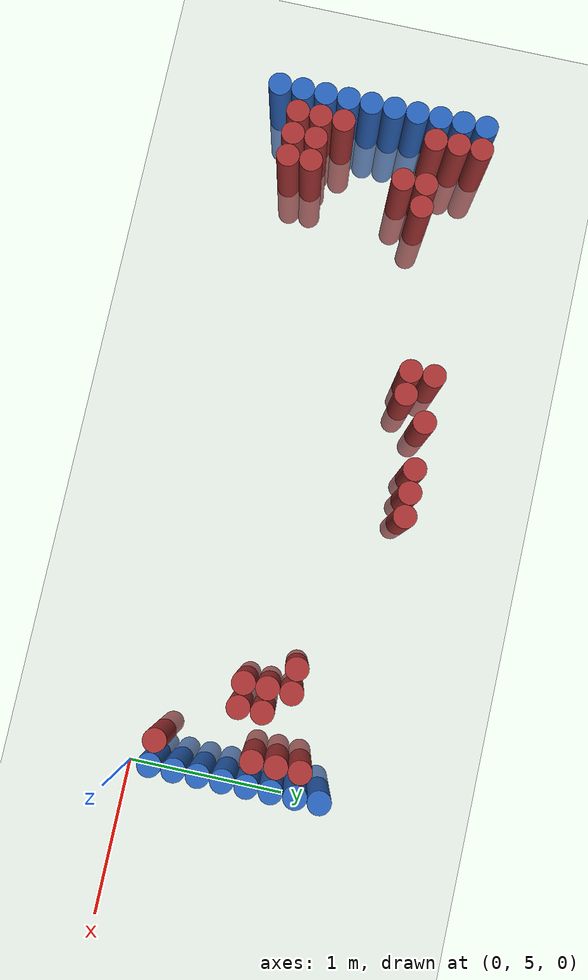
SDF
<sdf version="1.6">
 <world name="default">
  <model name="ground_plane">
   <static>1</static>
   <link name="link">
    <collision name="collision">
     <geometry><plane><normal>0 0 1</normal><size>100 100</size></plane></geometry>
     <surface><friction><ode><mu>100</mu><mu2>50</mu2></ode></friction></surface>
    </collision>
    <visual name="visual">
     <cast_shadows>0</cast_shadows>
     <geometry><plane><normal>0 0 1</normal><size>100 100</size></plane></geometry>
     <material>
      <script><uri>file://media/materials/scripts/gazebo.material</uri><name>Gazebo/Grey</name></script>
     </material>
    </visual>
   </link>
  </model>
  <model name="unit_cylinder_95">
   <static>1</static>
   <pose>-4.425000 5.025000 0.000000 0.000000 0.000000 0.000000</pose>
   <link name="link">
    <inertial>
     <mass>1</mass>
     <inertia><ixx>0.145833</ixx><ixy>0</ixy><ixz>0</ixz><iyy>0.145833</iyy><iyz>0</iyz><izz>0.125</izz></inertia>
    </inertial>
    <collision name="collision">
     <geometry><cylinder><radius>0.075000</radius><length>1</length></cylinder></geometry>
    </collision>
    <visual name="visual">
     <geometry><cylinder><radius>0.075000</radius><length>1</length></cylinder></geometry>
     <material>
      <ambient>0.152000 0.379000 0.720000 1</ambient>
      <diffuse>0.152000 0.379000 0.720000 1</diffuse>
     </material>
     <material>
      <script><name>Gazebo/Grey</name><uri>file://media/materials/scripts/gazebo.material</uri></script>
     </material>
    </visual>
   </link>
  </model>
  <model name="unit_cylinder_96">
   <static>1</static>
   <pose>-4.425000 5.175000 0.000000 0.000000 0.000000 0.000000</pose>
   <link name="link">
    <inertial>
     <mass>1</mass>
     <inertia><ixx>0.145833</ixx><ixy>0</ixy><ixz>0</ixz><iyy>0.145833</iyy><iyz>0</iyz><izz>0.125</izz></inertia>
    </inertial>
    <collision name="collision">
     <geometry><cylinder><radius>0.075000</radius><length>1</length></cylinder></geometry>
    </collision>
    <visual name="visual">
     <geometry><cylinder><radius>0.075000</radius><length>1</length></cylinder></geometry>
     <material>
      <ambient>0.152000 0.379000 0.720000 1</ambient>
      <diffuse>0.152000 0.379000 0.720000 1</diffuse>
     </material>
     <material>
      <script><name>Gazebo/Grey</name><uri>file://media/materials/scripts/gazebo.material</uri></script>
     </material>
    </visual>
   </link>
  </model>
  <model name="unit_cylinder_97">
   <static>1</static>
   <pose>-4.425000 5.325000 0.000000 0.000000 0.000000 0.000000</pose>
   <link name="link">
    <inertial>
     <mass>1</mass>
     <inertia><ixx>0.145833</ixx><ixy>0</ixy><ixz>0</ixz><iyy>0.145833</iyy><iyz>0</iyz><izz>0.125</izz></inertia>
    </inertial>
    <collision name="collision">
     <geometry><cylinder><radius>0.075000</radius><length>1</length></cylinder></geometry>
    </collision>
    <visual name="visual">
     <geometry><cylinder><radius>0.075000</radius><length>1</length></cylinder></geometry>
     <material>
      <ambient>0.152000 0.379000 0.720000 1</ambient>
      <diffuse>0.152000 0.379000 0.720000 1</diffuse>
     </material>
     <material>
      <script><name>Gazebo/Grey</name><uri>file://media/materials/scripts/gazebo.material</uri></script>
     </material>
    </visual>
   </link>
  </model>
  <model name="unit_cylinder_98">
   <static>1</static>
   <pose>-4.425000 5.475000 0.000000 0.000000 0.000000 0.000000</pose>
   <link name="link">
    <inertial>
     <mass>1</mass>
     <inertia><ixx>0.145833</ixx><ixy>0</ixy><ixz>0</ixz><iyy>0.145833</iyy><iyz>0</iyz><izz>0.125</izz></inertia>
    </inertial>
    <collision name="collision">
     <geometry><cylinder><radius>0.075000</radius><length>1</length></cylinder></geometry>
    </collision>
    <visual name="visual">
     <geometry><cylinder><radius>0.075000</radius><length>1</length></cylinder></geometry>
     <material>
      <ambient>0.152000 0.379000 0.720000 1</ambient>
      <diffuse>0.152000 0.379000 0.720000 1</diffuse>
     </material>
     <material>
      <script><name>Gazebo/Grey</name><uri>file://media/materials/scripts/gazebo.material</uri></script>
     </material>
    </visual>
   </link>
  </model>
  <model name="unit_cylinder_99">
   <static>1</static>
   <pose>-4.425000 5.625000 0.000000 0.000000 0.000000 0.000000</pose>
   <link name="link">
    <inertial>
     <mass>1</mass>
     <inertia><ixx>0.145833</ixx><ixy>0</ixy><ixz>0</ixz><iyy>0.145833</iyy><iyz>0</iyz><izz>0.125</izz></inertia>
    </inertial>
    <collision name="collision">
     <geometry><cylinder><radius>0.075000</radius><length>1</length></cylinder></geometry>
    </collision>
    <visual name="visual">
     <geometry><cylinder><radius>0.075000</radius><length>1</length></cylinder></geometry>
     <material>
      <ambient>0.152000 0.379000 0.720000 1</ambient>
      <diffuse>0.152000 0.379000 0.720000 1</diffuse>
     </material>
     <material>
      <script><name>Gazebo/Grey</name><uri>file://media/materials/scripts/gazebo.material</uri></script>
     </material>
    </visual>
   </link>
  </model>
  <model name="unit_cylinder_100">
   <static>1</static>
   <pose>-4.425000 5.775000 0.000000 0.000000 0.000000 0.000000</pose>
   <link name="link">
    <inertial>
     <mass>1</mass>
     <inertia><ixx>0.145833</ixx><ixy>0</ixy><ixz>0</ixz><iyy>0.145833</iyy><iyz>0</iyz><izz>0.125</izz></inertia>
    </inertial>
    <collision name="collision">
     <geometry><cylinder><radius>0.075000</radius><length>1</length></cylinder></geometry>
    </collision>
    <visual name="visual">
     <geometry><cylinder><radius>0.075000</radius><length>1</length></cylinder></geometry>
     <material>
      <ambient>0.152000 0.379000 0.720000 1</ambient>
      <diffuse>0.152000 0.379000 0.720000 1</diffuse>
     </material>
     <material>
      <script><name>Gazebo/Grey</name><uri>file://media/materials/scripts/gazebo.material</uri></script>
     </material>
    </visual>
   </link>
  </model>
  <model name="unit_cylinder_101">
   <static>1</static>
   <pose>-4.425000 5.925000 0.000000 0.000000 0.000000 0.000000</pose>
   <link name="link">
    <inertial>
     <mass>1</mass>
     <inertia><ixx>0.145833</ixx><ixy>0</ixy><ixz>0</ixz><iyy>0.145833</iyy><iyz>0</iyz><izz>0.125</izz></inertia>
    </inertial>
    <collision name="collision">
     <geometry><cylinder><radius>0.075000</radius><length>1</length></cylinder></geometry>
    </collision>
    <visual name="visual">
     <geometry><cylinder><radius>0.075000</radius><length>1</length></cylinder></geometry>
     <material>
      <ambient>0.152000 0.379000 0.720000 1</ambient>
      <diffuse>0.152000 0.379000 0.720000 1</diffuse>
     </material>
     <material>
      <script><name>Gazebo/Grey</name><uri>file://media/materials/scripts/gazebo.material</uri></script>
     </material>
    </visual>
   </link>
  </model>
  <model name="unit_cylinder_102">
   <static>1</static>
   <pose>-4.425000 6.075000 0.000000 0.000000 0.000000 0.000000</pose>
   <link name="link">
    <inertial>
     <mass>1</mass>
     <inertia><ixx>0.145833</ixx><ixy>0</ixy><ixz>0</ixz><iyy>0.145833</iyy><iyz>0</iyz><izz>0.125</izz></inertia>
    </inertial>
    <collision name="collision">
     <geometry><cylinder><radius>0.075000</radius><length>1</length></cylinder></geometry>
    </collision>
    <visual name="visual">
     <geometry><cylinder><radius>0.075000</radius><length>1</length></cylinder></geometry>
     <material>
      <ambient>0.152000 0.379000 0.720000 1</ambient>
      <diffuse>0.152000 0.379000 0.720000 1</diffuse>
     </material>
     <material>
      <script><name>Gazebo/Grey</name><uri>file://media/materials/scripts/gazebo.material</uri></script>
     </material>
    </visual>
   </link>
  </model>
  <model name="unit_cylinder_103">
   <static>1</static>
   <pose>-4.425000 6.225000 0.000000 0.000000 0.000000 0.000000</pose>
   <link name="link">
    <inertial>
     <mass>1</mass>
     <inertia><ixx>0.145833</ixx><ixy>0</ixy><ixz>0</ixz><iyy>0.145833</iyy><iyz>0</iyz><izz>0.125</izz></inertia>
    </inertial>
    <collision name="collision">
     <geometry><cylinder><radius>0.075000</radius><length>1</length></cylinder></geometry>
    </collision>
    <visual name="visual">
     <geometry><cylinder><radius>0.075000</radius><length>1</length></cylinder></geometry>
     <material>
      <ambient>0.152000 0.379000 0.720000 1</ambient>
      <diffuse>0.152000 0.379000 0.720000 1</diffuse>
     </material>
     <material>
      <script><name>Gazebo/Grey</name><uri>file://media/materials/scripts/gazebo.material</uri></script>
     </material>
    </visual>
   </link>
  </model>
  <model name="unit_cylinder_104">
   <static>1</static>
   <pose>-4.425000 6.375000 0.000000 0.000000 0.000000 0.000000</pose>
   <link name="link">
    <inertial>
     <mass>1</mass>
     <inertia><ixx>0.145833</ixx><ixy>0</ixy><ixz>0</ixz><iyy>0.145833</iyy><iyz>0</iyz><izz>0.125</izz></inertia>
    </inertial>
    <collision name="collision">
     <geometry><cylinder><radius>0.075000</radius><length>1</length></cylinder></geometry>
    </collision>
    <visual name="visual">
     <geometry><cylinder><radius>0.075000</radius><length>1</length></cylinder></geometry>
     <material>
      <ambient>0.152000 0.379000 0.720000 1</ambient>
      <diffuse>0.152000 0.379000 0.720000 1</diffuse>
     </material>
     <material>
      <script><name>Gazebo/Grey</name><uri>file://media/materials/scripts/gazebo.material</uri></script>
     </material>
    </visual>
   </link>
  </model>
  <model name="unit_cylinder_126">
   <static>1</static>
   <pose>-4.275000 5.175000 0.000000 0.000000 0.000000 0.000000</pose>
   <link name="link">
    <inertial>
     <mass>1</mass>
     <inertia><ixx>0.145833</ixx><ixy>0</ixy><ixz>0</ixz><iyy>0.145833</iyy><iyz>0</iyz><izz>0.125</izz></inertia>
    </inertial>
    <collision name="collision">
     <geometry><cylinder><radius>0.075000</radius><length>1</length></cylinder></geometry>
    </collision>
    <visual name="visual">
     <geometry><cylinder><radius>0.075000</radius><length>1</length></cylinder></geometry>
     <material>
      <ambient>0.648000 0.192000 0.192000 1</ambient>
      <diffuse>0.648000 0.192000 0.192000 1</diffuse>
     </material>
     <material>
      <script><name>Gazebo/Grey</name><uri>file://media/materials/scripts/gazebo.material</uri></script>
     </material>
    </visual>
   </link>
  </model>
  <model name="unit_cylinder_127">
   <static>1</static>
   <pose>-4.275000 5.325000 0.000000 0.000000 0.000000 0.000000</pose>
   <link name="link">
    <inertial>
     <mass>1</mass>
     <inertia><ixx>0.145833</ixx><ixy>0</ixy><ixz>0</ixz><iyy>0.145833</iyy><iyz>0</iyz><izz>0.125</izz></inertia>
    </inertial>
    <collision name="collision">
     <geometry><cylinder><radius>0.075000</radius><length>1</length></cylinder></geometry>
    </collision>
    <visual name="visual">
     <geometry><cylinder><radius>0.075000</radius><length>1</length></cylinder></geometry>
     <material>
      <ambient>0.648000 0.192000 0.192000 1</ambient>
      <diffuse>0.648000 0.192000 0.192000 1</diffuse>
     </material>
     <material>
      <script><name>Gazebo/Grey</name><uri>file://media/materials/scripts/gazebo.material</uri></script>
     </material>
    </visual>
   </link>
  </model>
  <model name="unit_cylinder_128">
   <static>1</static>
   <pose>-4.275000 5.475000 0.000000 0.000000 0.000000 0.000000</pose>
   <link name="link">
    <inertial>
     <mass>1</mass>
     <inertia><ixx>0.145833</ixx><ixy>0</ixy><ixz>0</ixz><iyy>0.145833</iyy><iyz>0</iyz><izz>0.125</izz></inertia>
    </inertial>
    <collision name="collision">
     <geometry><cylinder><radius>0.075000</radius><length>1</length></cylinder></geometry>
    </collision>
    <visual name="visual">
     <geometry><cylinder><radius>0.075000</radius><length>1</length></cylinder></geometry>
     <material>
      <ambient>0.648000 0.192000 0.192000 1</ambient>
      <diffuse>0.648000 0.192000 0.192000 1</diffuse>
     </material>
     <material>
      <script><name>Gazebo/Grey</name><uri>file://media/materials/scripts/gazebo.material</uri></script>
     </material>
    </visual>
   </link>
  </model>
  <model name="unit_cylinder_129">
   <static>1</static>
   <pose>-4.275000 6.075000 0.000000 0.000000 0.000000 0.000000</pose>
   <link name="link">
    <inertial>
     <mass>1</mass>
     <inertia><ixx>0.145833</ixx><ixy>0</ixy><ixz>0</ixz><iyy>0.145833</iyy><iyz>0</iyz><izz>0.125</izz></inertia>
    </inertial>
    <collision name="collision">
     <geometry><cylinder><radius>0.075000</radius><length>1</length></cylinder></geometry>
    </collision>
    <visual name="visual">
     <geometry><cylinder><radius>0.075000</radius><length>1</length></cylinder></geometry>
     <material>
      <ambient>0.648000 0.192000 0.192000 1</ambient>
      <diffuse>0.648000 0.192000 0.192000 1</diffuse>
     </material>
     <material>
      <script><name>Gazebo/Grey</name><uri>file://media/materials/scripts/gazebo.material</uri></script>
     </material>
    </visual>
   </link>
  </model>
  <model name="unit_cylinder_130">
   <static>1</static>
   <pose>-4.275000 6.225000 0.000000 0.000000 0.000000 0.000000</pose>
   <link name="link">
    <inertial>
     <mass>1</mass>
     <inertia><ixx>0.145833</ixx><ixy>0</ixy><ixz>0</ixz><iyy>0.145833</iyy><iyz>0</iyz><izz>0.125</izz></inertia>
    </inertial>
    <collision name="collision">
     <geometry><cylinder><radius>0.075000</radius><length>1</length></cylinder></geometry>
    </collision>
    <visual name="visual">
     <geometry><cylinder><radius>0.075000</radius><length>1</length></cylinder></geometry>
     <material>
      <ambient>0.648000 0.192000 0.192000 1</ambient>
      <diffuse>0.648000 0.192000 0.192000 1</diffuse>
     </material>
     <material>
      <script><name>Gazebo/Grey</name><uri>file://media/materials/scripts/gazebo.material</uri></script>
     </material>
    </visual>
   </link>
  </model>
  <model name="unit_cylinder_131">
   <static>1</static>
   <pose>-4.275000 6.375000 0.000000 0.000000 0.000000 0.000000</pose>
   <link name="link">
    <inertial>
     <mass>1</mass>
     <inertia><ixx>0.145833</ixx><ixy>0</ixy><ixz>0</ixz><iyy>0.145833</iyy><iyz>0</iyz><izz>0.125</izz></inertia>
    </inertial>
    <collision name="collision">
     <geometry><cylinder><radius>0.075000</radius><length>1</length></cylinder></geometry>
    </collision>
    <visual name="visual">
     <geometry><cylinder><radius>0.075000</radius><length>1</length></cylinder></geometry>
     <material>
      <ambient>0.648000 0.192000 0.192000 1</ambient>
      <diffuse>0.648000 0.192000 0.192000 1</diffuse>
     </material>
     <material>
      <script><name>Gazebo/Grey</name><uri>file://media/materials/scripts/gazebo.material</uri></script>
     </material>
    </visual>
   </link>
  </model>
  <model name="unit_cylinder_143">
   <static>1</static>
   <pose>-4.125000 5.175000 0.000000 0.000000 0.000000 0.000000</pose>
   <link name="link">
    <inertial>
     <mass>1</mass>
     <inertia><ixx>0.145833</ixx><ixy>0</ixy><ixz>0</ixz><iyy>0.145833</iyy><iyz>0</iyz><izz>0.125</izz></inertia>
    </inertial>
    <collision name="collision">
     <geometry><cylinder><radius>0.075000</radius><length>1</length></cylinder></geometry>
    </collision>
    <visual name="visual">
     <geometry><cylinder><radius>0.075000</radius><length>1</length></cylinder></geometry>
     <material>
      <ambient>0.648000 0.192000 0.192000 1</ambient>
      <diffuse>0.648000 0.192000 0.192000 1</diffuse>
     </material>
     <material>
      <script><name>Gazebo/Grey</name><uri>file://media/materials/scripts/gazebo.material</uri></script>
     </material>
    </visual>
   </link>
  </model>
  <model name="unit_cylinder_144">
   <static>1</static>
   <pose>-4.125000 5.325000 0.000000 0.000000 0.000000 0.000000</pose>
   <link name="link">
    <inertial>
     <mass>1</mass>
     <inertia><ixx>0.145833</ixx><ixy>0</ixy><ixz>0</ixz><iyy>0.145833</iyy><iyz>0</iyz><izz>0.125</izz></inertia>
    </inertial>
    <collision name="collision">
     <geometry><cylinder><radius>0.075000</radius><length>1</length></cylinder></geometry>
    </collision>
    <visual name="visual">
     <geometry><cylinder><radius>0.075000</radius><length>1</length></cylinder></geometry>
     <material>
      <ambient>0.648000 0.192000 0.192000 1</ambient>
      <diffuse>0.648000 0.192000 0.192000 1</diffuse>
     </material>
     <material>
      <script><name>Gazebo/Grey</name><uri>file://media/materials/scripts/gazebo.material</uri></script>
     </material>
    </visual>
   </link>
  </model>
  <model name="unit_cylinder_149">
   <static>1</static>
   <pose>-3.975000 5.175000 0.000000 0.000000 0.000000 0.000000</pose>
   <link name="link">
    <inertial>
     <mass>1</mass>
     <inertia><ixx>0.145833</ixx><ixy>0</ixy><ixz>0</ixz><iyy>0.145833</iyy><iyz>0</iyz><izz>0.125</izz></inertia>
    </inertial>
    <collision name="collision">
     <geometry><cylinder><radius>0.075000</radius><length>1</length></cylinder></geometry>
    </collision>
    <visual name="visual">
     <geometry><cylinder><radius>0.075000</radius><length>1</length></cylinder></geometry>
     <material>
      <ambient>0.648000 0.192000 0.192000 1</ambient>
      <diffuse>0.648000 0.192000 0.192000 1</diffuse>
     </material>
     <material>
      <script><name>Gazebo/Grey</name><uri>file://media/materials/scripts/gazebo.material</uri></script>
     </material>
    </visual>
   </link>
  </model>
  <model name="unit_cylinder_150">
   <static>1</static>
   <pose>-3.975000 5.325000 0.000000 0.000000 0.000000 0.000000</pose>
   <link name="link">
    <inertial>
     <mass>1</mass>
     <inertia><ixx>0.145833</ixx><ixy>0</ixy><ixz>0</ixz><iyy>0.145833</iyy><iyz>0</iyz><izz>0.125</izz></inertia>
    </inertial>
    <collision name="collision">
     <geometry><cylinder><radius>0.075000</radius><length>1</length></cylinder></geometry>
    </collision>
    <visual name="visual">
     <geometry><cylinder><radius>0.075000</radius><length>1</length></cylinder></geometry>
     <material>
      <ambient>0.648000 0.192000 0.192000 1</ambient>
      <diffuse>0.648000 0.192000 0.192000 1</diffuse>
     </material>
     <material>
      <script><name>Gazebo/Grey</name><uri>file://media/materials/scripts/gazebo.material</uri></script>
     </material>
    </visual>
   </link>
  </model>
  <model name="unit_cylinder_151">
   <static>1</static>
   <pose>-3.975000 5.925000 0.000000 0.000000 0.000000 0.000000</pose>
   <link name="link">
    <inertial>
     <mass>1</mass>
     <inertia><ixx>0.145833</ixx><ixy>0</ixy><ixz>0</ixz><iyy>0.145833</iyy><iyz>0</iyz><izz>0.125</izz></inertia>
    </inertial>
    <collision name="collision">
     <geometry><cylinder><radius>0.075000</radius><length>1</length></cylinder></geometry>
    </collision>
    <visual name="visual">
     <geometry><cylinder><radius>0.075000</radius><length>1</length></cylinder></geometry>
     <material>
      <ambient>0.648000 0.192000 0.192000 1</ambient>
      <diffuse>0.648000 0.192000 0.192000 1</diffuse>
     </material>
     <material>
      <script><name>Gazebo/Grey</name><uri>file://media/materials/scripts/gazebo.material</uri></script>
     </material>
    </visual>
   </link>
  </model>
  <model name="unit_cylinder_152">
   <static>1</static>
   <pose>-3.975000 6.075000 0.000000 0.000000 0.000000 0.000000</pose>
   <link name="link">
    <inertial>
     <mass>1</mass>
     <inertia><ixx>0.145833</ixx><ixy>0</ixy><ixz>0</ixz><iyy>0.145833</iyy><iyz>0</iyz><izz>0.125</izz></inertia>
    </inertial>
    <collision name="collision">
     <geometry><cylinder><radius>0.075000</radius><length>1</length></cylinder></geometry>
    </collision>
    <visual name="visual">
     <geometry><cylinder><radius>0.075000</radius><length>1</length></cylinder></geometry>
     <material>
      <ambient>0.648000 0.192000 0.192000 1</ambient>
      <diffuse>0.648000 0.192000 0.192000 1</diffuse>
     </material>
     <material>
      <script><name>Gazebo/Grey</name><uri>file://media/materials/scripts/gazebo.material</uri></script>
     </material>
    </visual>
   </link>
  </model>
  <model name="unit_cylinder_155">
   <static>1</static>
   <pose>-3.825000 6.075000 0.000000 0.000000 0.000000 0.000000</pose>
   <link name="link">
    <inertial>
     <mass>1</mass>
     <inertia><ixx>0.145833</ixx><ixy>0</ixy><ixz>0</ixz><iyy>0.145833</iyy><iyz>0</iyz><izz>0.125</izz></inertia>
    </inertial>
    <collision name="collision">
     <geometry><cylinder><radius>0.075000</radius><length>1</length></cylinder></geometry>
    </collision>
    <visual name="visual">
     <geometry><cylinder><radius>0.075000</radius><length>1</length></cylinder></geometry>
     <material>
      <ambient>0.648000 0.192000 0.192000 1</ambient>
      <diffuse>0.648000 0.192000 0.192000 1</diffuse>
     </material>
     <material>
      <script><name>Gazebo/Grey</name><uri>file://media/materials/scripts/gazebo.material</uri></script>
     </material>
    </visual>
   </link>
  </model>
  <model name="unit_cylinder_173">
   <static>1</static>
   <pose>-2.775000 6.225000 0.000000 0.000000 0.000000 0.000000</pose>
   <link name="link">
    <inertial>
     <mass>1</mass>
     <inertia><ixx>0.145833</ixx><ixy>0</ixy><ixz>0</ixz><iyy>0.145833</iyy><iyz>0</iyz><izz>0.125</izz></inertia>
    </inertial>
    <collision name="collision">
     <geometry><cylinder><radius>0.075000</radius><length>1</length></cylinder></geometry>
    </collision>
    <visual name="visual">
     <geometry><cylinder><radius>0.075000</radius><length>1</length></cylinder></geometry>
     <material>
      <ambient>0.648000 0.192000 0.192000 1</ambient>
      <diffuse>0.648000 0.192000 0.192000 1</diffuse>
     </material>
     <material>
      <script><name>Gazebo/Grey</name><uri>file://media/materials/scripts/gazebo.material</uri></script>
     </material>
    </visual>
   </link>
  </model>
  <model name="unit_cylinder_174">
   <static>1</static>
   <pose>-2.775000 6.375000 0.000000 0.000000 0.000000 0.000000</pose>
   <link name="link">
    <inertial>
     <mass>1</mass>
     <inertia><ixx>0.145833</ixx><ixy>0</ixy><ixz>0</ixz><iyy>0.145833</iyy><iyz>0</iyz><izz>0.125</izz></inertia>
    </inertial>
    <collision name="collision">
     <geometry><cylinder><radius>0.075000</radius><length>1</length></cylinder></geometry>
    </collision>
    <visual name="visual">
     <geometry><cylinder><radius>0.075000</radius><length>1</length></cylinder></geometry>
     <material>
      <ambient>0.648000 0.192000 0.192000 1</ambient>
      <diffuse>0.648000 0.192000 0.192000 1</diffuse>
     </material>
     <material>
      <script><name>Gazebo/Grey</name><uri>file://media/materials/scripts/gazebo.material</uri></script>
     </material>
    </visual>
   </link>
  </model>
  <model name="unit_cylinder_179">
   <static>1</static>
   <pose>-2.625000 6.225000 0.000000 0.000000 0.000000 0.000000</pose>
   <link name="link">
    <inertial>
     <mass>1</mass>
     <inertia><ixx>0.145833</ixx><ixy>0</ixy><ixz>0</ixz><iyy>0.145833</iyy><iyz>0</iyz><izz>0.125</izz></inertia>
    </inertial>
    <collision name="collision">
     <geometry><cylinder><radius>0.075000</radius><length>1</length></cylinder></geometry>
    </collision>
    <visual name="visual">
     <geometry><cylinder><radius>0.075000</radius><length>1</length></cylinder></geometry>
     <material>
      <ambient>0.648000 0.192000 0.192000 1</ambient>
      <diffuse>0.648000 0.192000 0.192000 1</diffuse>
     </material>
     <material>
      <script><name>Gazebo/Grey</name><uri>file://media/materials/scripts/gazebo.material</uri></script>
     </material>
    </visual>
   </link>
  </model>
  <model name="unit_cylinder_183">
   <static>1</static>
   <pose>-2.475000 6.375000 0.000000 0.000000 0.000000 0.000000</pose>
   <link name="link">
    <inertial>
     <mass>1</mass>
     <inertia><ixx>0.145833</ixx><ixy>0</ixy><ixz>0</ixz><iyy>0.145833</iyy><iyz>0</iyz><izz>0.125</izz></inertia>
    </inertial>
    <collision name="collision">
     <geometry><cylinder><radius>0.075000</radius><length>1</length></cylinder></geometry>
    </collision>
    <visual name="visual">
     <geometry><cylinder><radius>0.075000</radius><length>1</length></cylinder></geometry>
     <material>
      <ambient>0.648000 0.192000 0.192000 1</ambient>
      <diffuse>0.648000 0.192000 0.192000 1</diffuse>
     </material>
     <material>
      <script><name>Gazebo/Grey</name><uri>file://media/materials/scripts/gazebo.material</uri></script>
     </material>
    </visual>
   </link>
  </model>
  <model name="unit_cylinder_196">
   <static>1</static>
   <pose>-2.175000 6.375000 0.000000 0.000000 0.000000 0.000000</pose>
   <link name="link">
    <inertial>
     <mass>1</mass>
     <inertia><ixx>0.145833</ixx><ixy>0</ixy><ixz>0</ixz><iyy>0.145833</iyy><iyz>0</iyz><izz>0.125</izz></inertia>
    </inertial>
    <collision name="collision">
     <geometry><cylinder><radius>0.075000</radius><length>1</length></cylinder></geometry>
    </collision>
    <visual name="visual">
     <geometry><cylinder><radius>0.075000</radius><length>1</length></cylinder></geometry>
     <material>
      <ambient>0.648000 0.192000 0.192000 1</ambient>
      <diffuse>0.648000 0.192000 0.192000 1</diffuse>
     </material>
     <material>
      <script><name>Gazebo/Grey</name><uri>file://media/materials/scripts/gazebo.material</uri></script>
     </material>
    </visual>
   </link>
  </model>
  <model name="unit_cylinder_203">
   <static>1</static>
   <pose>-2.025000 6.375000 0.000000 0.000000 0.000000 0.000000</pose>
   <link name="link">
    <inertial>
     <mass>1</mass>
     <inertia><ixx>0.145833</ixx><ixy>0</ixy><ixz>0</ixz><iyy>0.145833</iyy><iyz>0</iyz><izz>0.125</izz></inertia>
    </inertial>
    <collision name="collision">
     <geometry><cylinder><radius>0.075000</radius><length>1</length></cylinder></geometry>
    </collision>
    <visual name="visual">
     <geometry><cylinder><radius>0.075000</radius><length>1</length></cylinder></geometry>
     <material>
      <ambient>0.648000 0.192000 0.192000 1</ambient>
      <diffuse>0.648000 0.192000 0.192000 1</diffuse>
     </material>
     <material>
      <script><name>Gazebo/Grey</name><uri>file://media/materials/scripts/gazebo.material</uri></script>
     </material>
    </visual>
   </link>
  </model>
  <model name="unit_cylinder_209">
   <static>1</static>
   <pose>-1.875000 6.375000 0.000000 0.000000 0.000000 0.000000</pose>
   <link name="link">
    <inertial>
     <mass>1</mass>
     <inertia><ixx>0.145833</ixx><ixy>0</ixy><ixz>0</ixz><iyy>0.145833</iyy><iyz>0</iyz><izz>0.125</izz></inertia>
    </inertial>
    <collision name="collision">
     <geometry><cylinder><radius>0.075000</radius><length>1</length></cylinder></geometry>
    </collision>
    <visual name="visual">
     <geometry><cylinder><radius>0.075000</radius><length>1</length></cylinder></geometry>
     <material>
      <ambient>0.648000 0.192000 0.192000 1</ambient>
      <diffuse>0.648000 0.192000 0.192000 1</diffuse>
     </material>
     <material>
      <script><name>Gazebo/Grey</name><uri>file://media/materials/scripts/gazebo.material</uri></script>
     </material>
    </visual>
   </link>
  </model>
  <model name="unit_cylinder_231">
   <static>1</static>
   <pose>-0.825000 5.925000 0.000000 0.000000 0.000000 0.000000</pose>
   <link name="link">
    <inertial>
     <mass>1</mass>
     <inertia><ixx>0.145833</ixx><ixy>0</ixy><ixz>0</ixz><iyy>0.145833</iyy><iyz>0</iyz><izz>0.125</izz></inertia>
    </inertial>
    <collision name="collision">
     <geometry><cylinder><radius>0.075000</radius><length>1</length></cylinder></geometry>
    </collision>
    <visual name="visual">
     <geometry><cylinder><radius>0.075000</radius><length>1</length></cylinder></geometry>
     <material>
      <ambient>0.648000 0.192000 0.192000 1</ambient>
      <diffuse>0.648000 0.192000 0.192000 1</diffuse>
     </material>
     <material>
      <script><name>Gazebo/Grey</name><uri>file://media/materials/scripts/gazebo.material</uri></script>
     </material>
    </visual>
   </link>
  </model>
  <model name="unit_cylinder_232">
   <static>1</static>
   <pose>-0.675000 5.625000 0.000000 0.000000 0.000000 0.000000</pose>
   <link name="link">
    <inertial>
     <mass>1</mass>
     <inertia><ixx>0.145833</ixx><ixy>0</ixy><ixz>0</ixz><iyy>0.145833</iyy><iyz>0</iyz><izz>0.125</izz></inertia>
    </inertial>
    <collision name="collision">
     <geometry><cylinder><radius>0.075000</radius><length>1</length></cylinder></geometry>
    </collision>
    <visual name="visual">
     <geometry><cylinder><radius>0.075000</radius><length>1</length></cylinder></geometry>
     <material>
      <ambient>0.648000 0.192000 0.192000 1</ambient>
      <diffuse>0.648000 0.192000 0.192000 1</diffuse>
     </material>
     <material>
      <script><name>Gazebo/Grey</name><uri>file://media/materials/scripts/gazebo.material</uri></script>
     </material>
    </visual>
   </link>
  </model>
  <model name="unit_cylinder_233">
   <static>1</static>
   <pose>-0.675000 5.775000 0.000000 0.000000 0.000000 0.000000</pose>
   <link name="link">
    <inertial>
     <mass>1</mass>
     <inertia><ixx>0.145833</ixx><ixy>0</ixy><ixz>0</ixz><iyy>0.145833</iyy><iyz>0</iyz><izz>0.125</izz></inertia>
    </inertial>
    <collision name="collision">
     <geometry><cylinder><radius>0.075000</radius><length>1</length></cylinder></geometry>
    </collision>
    <visual name="visual">
     <geometry><cylinder><radius>0.075000</radius><length>1</length></cylinder></geometry>
     <material>
      <ambient>0.648000 0.192000 0.192000 1</ambient>
      <diffuse>0.648000 0.192000 0.192000 1</diffuse>
     </material>
     <material>
      <script><name>Gazebo/Grey</name><uri>file://media/materials/scripts/gazebo.material</uri></script>
     </material>
    </visual>
   </link>
  </model>
  <model name="unit_cylinder_234">
   <static>1</static>
   <pose>-0.675000 5.925000 0.000000 0.000000 0.000000 0.000000</pose>
   <link name="link">
    <inertial>
     <mass>1</mass>
     <inertia><ixx>0.145833</ixx><ixy>0</ixy><ixz>0</ixz><iyy>0.145833</iyy><iyz>0</iyz><izz>0.125</izz></inertia>
    </inertial>
    <collision name="collision">
     <geometry><cylinder><radius>0.075000</radius><length>1</length></cylinder></geometry>
    </collision>
    <visual name="visual">
     <geometry><cylinder><radius>0.075000</radius><length>1</length></cylinder></geometry>
     <material>
      <ambient>0.648000 0.192000 0.192000 1</ambient>
      <diffuse>0.648000 0.192000 0.192000 1</diffuse>
     </material>
     <material>
      <script><name>Gazebo/Grey</name><uri>file://media/materials/scripts/gazebo.material</uri></script>
     </material>
    </visual>
   </link>
  </model>
  <model name="unit_cylinder_235">
   <static>1</static>
   <pose>-0.525000 5.625000 0.000000 0.000000 0.000000 0.000000</pose>
   <link name="link">
    <inertial>
     <mass>1</mass>
     <inertia><ixx>0.145833</ixx><ixy>0</ixy><ixz>0</ixz><iyy>0.145833</iyy><iyz>0</iyz><izz>0.125</izz></inertia>
    </inertial>
    <collision name="collision">
     <geometry><cylinder><radius>0.075000</radius><length>1</length></cylinder></geometry>
    </collision>
    <visual name="visual">
     <geometry><cylinder><radius>0.075000</radius><length>1</length></cylinder></geometry>
     <material>
      <ambient>0.648000 0.192000 0.192000 1</ambient>
      <diffuse>0.648000 0.192000 0.192000 1</diffuse>
     </material>
     <material>
      <script><name>Gazebo/Grey</name><uri>file://media/materials/scripts/gazebo.material</uri></script>
     </material>
    </visual>
   </link>
  </model>
  <model name="unit_cylinder_236">
   <static>1</static>
   <pose>-0.525000 5.775000 0.000000 0.000000 0.000000 0.000000</pose>
   <link name="link">
    <inertial>
     <mass>1</mass>
     <inertia><ixx>0.145833</ixx><ixy>0</ixy><ixz>0</ixz><iyy>0.145833</iyy><iyz>0</iyz><izz>0.125</izz></inertia>
    </inertial>
    <collision name="collision">
     <geometry><cylinder><radius>0.075000</radius><length>1</length></cylinder></geometry>
    </collision>
    <visual name="visual">
     <geometry><cylinder><radius>0.075000</radius><length>1</length></cylinder></geometry>
     <material>
      <ambient>0.648000 0.192000 0.192000 1</ambient>
      <diffuse>0.648000 0.192000 0.192000 1</diffuse>
     </material>
     <material>
      <script><name>Gazebo/Grey</name><uri>file://media/materials/scripts/gazebo.material</uri></script>
     </material>
    </visual>
   </link>
  </model>
  <model name="unit_cylinder_241">
   <static>1</static>
   <pose>-0.225000 5.175000 0.000000 0.000000 0.000000 0.000000</pose>
   <link name="link">
    <inertial>
     <mass>1</mass>
     <inertia><ixx>0.145833</ixx><ixy>0</ixy><ixz>0</ixz><iyy>0.145833</iyy><iyz>0</iyz><izz>0.125</izz></inertia>
    </inertial>
    <collision name="collision">
     <geometry><cylinder><radius>0.075000</radius><length>1</length></cylinder></geometry>
    </collision>
    <visual name="visual">
     <geometry><cylinder><radius>0.075000</radius><length>1</length></cylinder></geometry>
     <material>
      <ambient>0.648000 0.192000 0.192000 1</ambient>
      <diffuse>0.648000 0.192000 0.192000 1</diffuse>
     </material>
     <material>
      <script><name>Gazebo/Grey</name><uri>file://media/materials/scripts/gazebo.material</uri></script>
     </material>
    </visual>
   </link>
  </model>
  <model name="unit_cylinder_242">
   <static>1</static>
   <pose>-0.225000 5.775000 0.000000 0.000000 0.000000 0.000000</pose>
   <link name="link">
    <inertial>
     <mass>1</mass>
     <inertia><ixx>0.145833</ixx><ixy>0</ixy><ixz>0</ixz><iyy>0.145833</iyy><iyz>0</iyz><izz>0.125</izz></inertia>
    </inertial>
    <collision name="collision">
     <geometry><cylinder><radius>0.075000</radius><length>1</length></cylinder></geometry>
    </collision>
    <visual name="visual">
     <geometry><cylinder><radius>0.075000</radius><length>1</length></cylinder></geometry>
     <material>
      <ambient>0.648000 0.192000 0.192000 1</ambient>
      <diffuse>0.648000 0.192000 0.192000 1</diffuse>
     </material>
     <material>
      <script><name>Gazebo/Grey</name><uri>file://media/materials/scripts/gazebo.material</uri></script>
     </material>
    </visual>
   </link>
  </model>
  <model name="unit_cylinder_243">
   <static>1</static>
   <pose>-0.225000 5.925000 0.000000 0.000000 0.000000 0.000000</pose>
   <link name="link">
    <inertial>
     <mass>1</mass>
     <inertia><ixx>0.145833</ixx><ixy>0</ixy><ixz>0</ixz><iyy>0.145833</iyy><iyz>0</iyz><izz>0.125</izz></inertia>
    </inertial>
    <collision name="collision">
     <geometry><cylinder><radius>0.075000</radius><length>1</length></cylinder></geometry>
    </collision>
    <visual name="visual">
     <geometry><cylinder><radius>0.075000</radius><length>1</length></cylinder></geometry>
     <material>
      <ambient>0.648000 0.192000 0.192000 1</ambient>
      <diffuse>0.648000 0.192000 0.192000 1</diffuse>
     </material>
     <material>
      <script><name>Gazebo/Grey</name><uri>file://media/materials/scripts/gazebo.material</uri></script>
     </material>
    </visual>
   </link>
  </model>
  <model name="unit_cylinder_244">
   <static>1</static>
   <pose>-0.225000 6.075000 0.000000 0.000000 0.000000 0.000000</pose>
   <link name="link">
    <inertial>
     <mass>1</mass>
     <inertia><ixx>0.145833</ixx><ixy>0</ixy><ixz>0</ixz><iyy>0.145833</iyy><iyz>0</iyz><izz>0.125</izz></inertia>
    </inertial>
    <collision name="collision">
     <geometry><cylinder><radius>0.075000</radius><length>1</length></cylinder></geometry>
    </collision>
    <visual name="visual">
     <geometry><cylinder><radius>0.075000</radius><length>1</length></cylinder></geometry>
     <material>
      <ambient>0.648000 0.192000 0.192000 1</ambient>
      <diffuse>0.648000 0.192000 0.192000 1</diffuse>
     </material>
     <material>
      <script><name>Gazebo/Grey</name><uri>file://media/materials/scripts/gazebo.material</uri></script>
     </material>
    </visual>
   </link>
  </model>
  <model name="unit_cylinder_257">
   <static>1</static>
   <pose>-0.075000 5.175000 0.000000 0.000000 0.000000 0.000000</pose>
   <link name="link">
    <inertial>
     <mass>1</mass>
     <inertia><ixx>0.145833</ixx><ixy>0</ixy><ixz>0</ixz><iyy>0.145833</iyy><iyz>0</iyz><izz>0.125</izz></inertia>
    </inertial>
    <collision name="collision">
     <geometry><cylinder><radius>0.075000</radius><length>1</length></cylinder></geometry>
    </collision>
    <visual name="visual">
     <geometry><cylinder><radius>0.075000</radius><length>1</length></cylinder></geometry>
     <material>
      <ambient>0.152000 0.379000 0.720000 1</ambient>
      <diffuse>0.152000 0.379000 0.720000 1</diffuse>
     </material>
     <material>
      <script><name>Gazebo/Grey</name><uri>file://media/materials/scripts/gazebo.material</uri></script>
     </material>
    </visual>
   </link>
  </model>
  <model name="unit_cylinder_258">
   <static>1</static>
   <pose>-0.075000 5.325000 0.000000 0.000000 0.000000 0.000000</pose>
   <link name="link">
    <inertial>
     <mass>1</mass>
     <inertia><ixx>0.145833</ixx><ixy>0</ixy><ixz>0</ixz><iyy>0.145833</iyy><iyz>0</iyz><izz>0.125</izz></inertia>
    </inertial>
    <collision name="collision">
     <geometry><cylinder><radius>0.075000</radius><length>1</length></cylinder></geometry>
    </collision>
    <visual name="visual">
     <geometry><cylinder><radius>0.075000</radius><length>1</length></cylinder></geometry>
     <material>
      <ambient>0.152000 0.379000 0.720000 1</ambient>
      <diffuse>0.152000 0.379000 0.720000 1</diffuse>
     </material>
     <material>
      <script><name>Gazebo/Grey</name><uri>file://media/materials/scripts/gazebo.material</uri></script>
     </material>
    </visual>
   </link>
  </model>
  <model name="unit_cylinder_259">
   <static>1</static>
   <pose>-0.075000 5.475000 0.000000 0.000000 0.000000 0.000000</pose>
   <link name="link">
    <inertial>
     <mass>1</mass>
     <inertia><ixx>0.145833</ixx><ixy>0</ixy><ixz>0</ixz><iyy>0.145833</iyy><iyz>0</iyz><izz>0.125</izz></inertia>
    </inertial>
    <collision name="collision">
     <geometry><cylinder><radius>0.075000</radius><length>1</length></cylinder></geometry>
    </collision>
    <visual name="visual">
     <geometry><cylinder><radius>0.075000</radius><length>1</length></cylinder></geometry>
     <material>
      <ambient>0.152000 0.379000 0.720000 1</ambient>
      <diffuse>0.152000 0.379000 0.720000 1</diffuse>
     </material>
     <material>
      <script><name>Gazebo/Grey</name><uri>file://media/materials/scripts/gazebo.material</uri></script>
     </material>
    </visual>
   </link>
  </model>
  <model name="unit_cylinder_260">
   <static>1</static>
   <pose>-0.075000 5.625000 0.000000 0.000000 0.000000 0.000000</pose>
   <link name="link">
    <inertial>
     <mass>1</mass>
     <inertia><ixx>0.145833</ixx><ixy>0</ixy><ixz>0</ixz><iyy>0.145833</iyy><iyz>0</iyz><izz>0.125</izz></inertia>
    </inertial>
    <collision name="collision">
     <geometry><cylinder><radius>0.075000</radius><length>1</length></cylinder></geometry>
    </collision>
    <visual name="visual">
     <geometry><cylinder><radius>0.075000</radius><length>1</length></cylinder></geometry>
     <material>
      <ambient>0.152000 0.379000 0.720000 1</ambient>
      <diffuse>0.152000 0.379000 0.720000 1</diffuse>
     </material>
     <material>
      <script><name>Gazebo/Grey</name><uri>file://media/materials/scripts/gazebo.material</uri></script>
     </material>
    </visual>
   </link>
  </model>
  <model name="unit_cylinder_261">
   <static>1</static>
   <pose>-0.075000 5.775000 0.000000 0.000000 0.000000 0.000000</pose>
   <link name="link">
    <inertial>
     <mass>1</mass>
     <inertia><ixx>0.145833</ixx><ixy>0</ixy><ixz>0</ixz><iyy>0.145833</iyy><iyz>0</iyz><izz>0.125</izz></inertia>
    </inertial>
    <collision name="collision">
     <geometry><cylinder><radius>0.075000</radius><length>1</length></cylinder></geometry>
    </collision>
    <visual name="visual">
     <geometry><cylinder><radius>0.075000</radius><length>1</length></cylinder></geometry>
     <material>
      <ambient>0.152000 0.379000 0.720000 1</ambient>
      <diffuse>0.152000 0.379000 0.720000 1</diffuse>
     </material>
     <material>
      <script><name>Gazebo/Grey</name><uri>file://media/materials/scripts/gazebo.material</uri></script>
     </material>
    </visual>
   </link>
  </model>
  <model name="unit_cylinder_262">
   <static>1</static>
   <pose>-0.075000 5.925000 0.000000 0.000000 0.000000 0.000000</pose>
   <link name="link">
    <inertial>
     <mass>1</mass>
     <inertia><ixx>0.145833</ixx><ixy>0</ixy><ixz>0</ixz><iyy>0.145833</iyy><iyz>0</iyz><izz>0.125</izz></inertia>
    </inertial>
    <collision name="collision">
     <geometry><cylinder><radius>0.075000</radius><length>1</length></cylinder></geometry>
    </collision>
    <visual name="visual">
     <geometry><cylinder><radius>0.075000</radius><length>1</length></cylinder></geometry>
     <material>
      <ambient>0.152000 0.379000 0.720000 1</ambient>
      <diffuse>0.152000 0.379000 0.720000 1</diffuse>
     </material>
     <material>
      <script><name>Gazebo/Grey</name><uri>file://media/materials/scripts/gazebo.material</uri></script>
     </material>
    </visual>
   </link>
  </model>
  <model name="unit_cylinder_263">
   <static>1</static>
   <pose>-0.075000 6.075000 0.000000 0.000000 0.000000 0.000000</pose>
   <link name="link">
    <inertial>
     <mass>1</mass>
     <inertia><ixx>0.145833</ixx><ixy>0</ixy><ixz>0</ixz><iyy>0.145833</iyy><iyz>0</iyz><izz>0.125</izz></inertia>
    </inertial>
    <collision name="collision">
     <geometry><cylinder><radius>0.075000</radius><length>1</length></cylinder></geometry>
    </collision>
    <visual name="visual">
     <geometry><cylinder><radius>0.075000</radius><length>1</length></cylinder></geometry>
     <material>
      <ambient>0.152000 0.379000 0.720000 1</ambient>
      <diffuse>0.152000 0.379000 0.720000 1</diffuse>
     </material>
     <material>
      <script><name>Gazebo/Grey</name><uri>file://media/materials/scripts/gazebo.material</uri></script>
     </material>
    </visual>
   </link>
  </model>
  <model name="unit_cylinder_264">
   <static>1</static>
   <pose>-0.075000 6.225000 0.000000 0.000000 0.000000 0.000000</pose>
   <link name="link">
    <inertial>
     <mass>1</mass>
     <inertia><ixx>0.145833</ixx><ixy>0</ixy><ixz>0</ixz><iyy>0.145833</iyy><iyz>0</iyz><izz>0.125</izz></inertia>
    </inertial>
    <collision name="collision">
     <geometry><cylinder><radius>0.075000</radius><length>1</length></cylinder></geometry>
    </collision>
    <visual name="visual">
     <geometry><cylinder><radius>0.075000</radius><length>1</length></cylinder></geometry>
     <material>
      <ambient>0.152000 0.379000 0.720000 1</ambient>
      <diffuse>0.152000 0.379000 0.720000 1</diffuse>
     </material>
     <material>
      <script><name>Gazebo/Grey</name><uri>file://media/materials/scripts/gazebo.material</uri></script>
     </material>
    </visual>
   </link>
  </model>
 </world>
</sdf>
